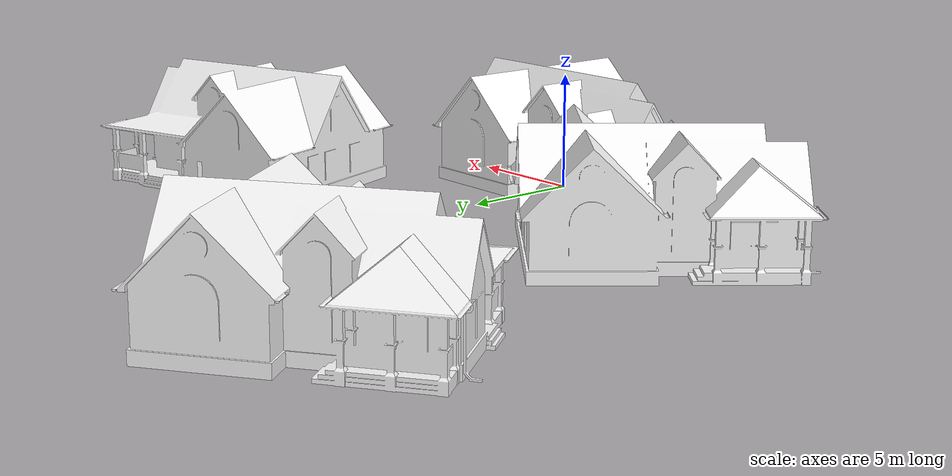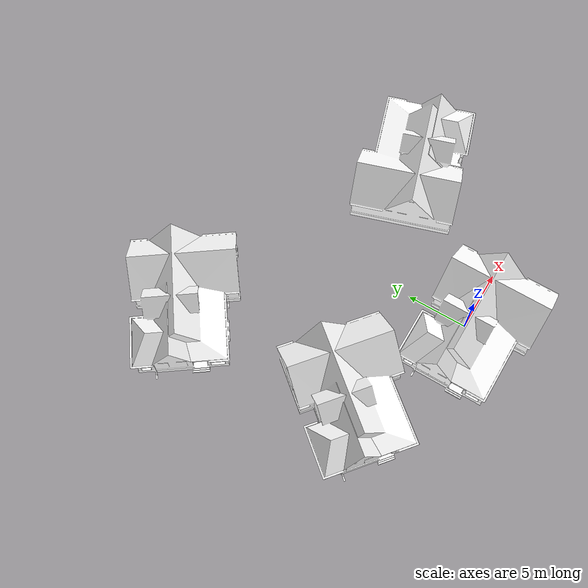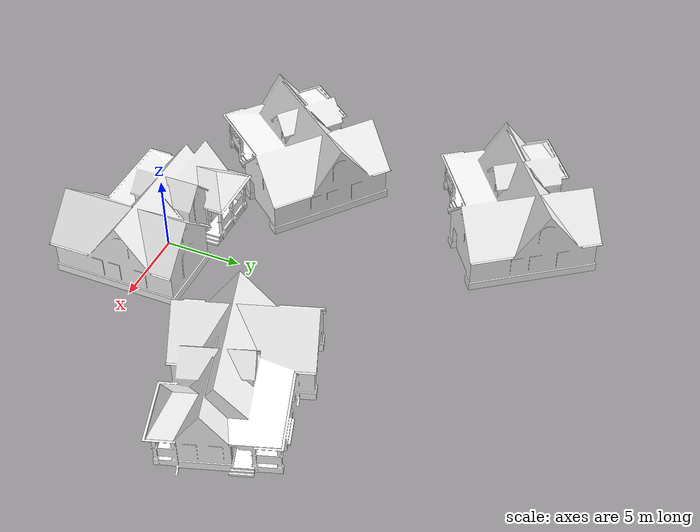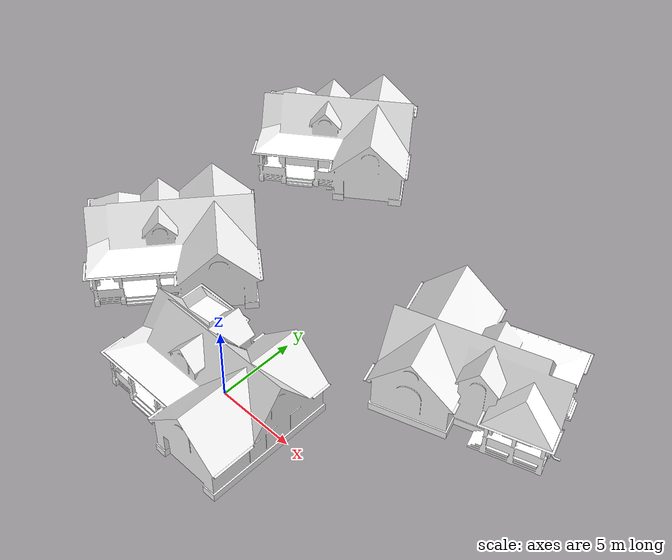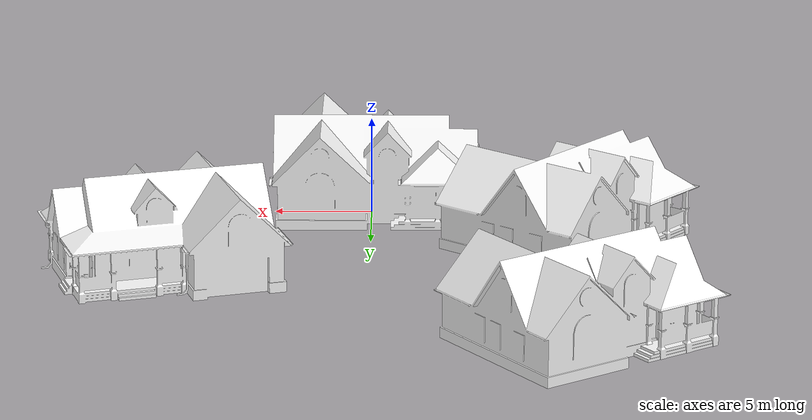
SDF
<sdf version='1.6'>
  <world name='default'>
    <gravity>0 0 0</gravity>
    <scene>
      <ambient>0.2 0.2 0.2 1</ambient>
      <background>1 1 1 1</background>
      <shadows>1</shadows>
      <grid>false</grid>
      <origin_visual>false</origin_visual>
    </scene>

    <include>
      <uri>model://sun</uri>
    </include>

   <model name="camera">
    <pose>0 0 0 0 0 0</pose>
    <link name="link">
      <kinematic>true</kinematic>
      <visual name="visual">
        <geometry>
          <box>
            <size>0.1 0.1 0.1</size>
          </box>
        </geometry>
      </visual>
      <sensor name="camera" type="camera">
        <camera>
          <horizontal_fov>1.047</horizontal_fov>
          <image>
            <width>640</width>
            <height>480</height>
          </image>
          <clip>
            <near>0.1</near>
            <far>100</far>
          </clip>
        </camera>
        <always_on>1</always_on>
        <update_rate>10</update_rate>
        <visualize>true</visualize>
        <plugin name="myCamera" filename="libcamp.so"/>
      </sensor>
      <sensor name='imu_sensor' type='imu'>
          <always_on>1</always_on>
          <update_rate>100</update_rate>
          <plugin name="myIMU" filename="libimup.so"/>
      </sensor>
      <sensor name='gps_sensor' type='gps'>
          <always_on>1</always_on>
          <update_rate>5</update_rate>
          <plugin name="myGPS" filename="libgpsp.so"/>
      </sensor>
    </link>

    <plugin name="model_push" filename="libmodel_push.so"/>
  </model>

     <model name='House 1'>
      <static>1</static>
      <link name='link'>
        <visual name='visual'>
          <geometry>
            <mesh>
              <uri>model://house_1/meshes/house_1.dae</uri>
              <scale>1 1 1</scale>
            </mesh>
          </geometry>
          <material>
            <script>
              <uri>model://house_1/materials/scripts</uri>
              <uri>model://house_1/materials/textures</uri>
              <name>House_1/Diffuse</name>
            </script>
            <shader type='normal_map_object_space'>
              <normal_map>House_1_Normal.png</normal_map>
            </shader>
          </material>
        </visual>
        <self_collide>0</self_collide>
        <kinematic>1</kinematic>
      </link>
      <pose frame=''>-0.020483 -0.694013 0 0 -0 0</pose>
    </model>

    <model name='House 1'>
      <static>1</static>
      <link name='link'>
        <visual name='visual'>
          <geometry>
            <mesh>
              <uri>model://house_1/meshes/house_1.dae</uri>
              <scale>1 1 1</scale>
            </mesh>
          </geometry>
          <material>
            <script>
              <uri>model://house_1/materials/scripts</uri>
              <uri>model://house_1/materials/textures</uri>
              <name>House_1/Diffuse</name>
            </script>
            <shader type='normal_map_object_space'>
              <normal_map>House_1_Normal.png</normal_map>
            </shader>
          </material>
        </visual>
        <self_collide>0</self_collide>
        <kinematic>1</kinematic>
      </link>
      <pose frame=''>-10 20 0 0 -0 120</pose>
    </model>

    <model name='House 1'>
      <static>1</static>
      <link name='link'>
        <visual name='visual'>
          <geometry>
            <mesh>
              <uri>model://house_1/meshes/house_1.dae</uri>
              <scale>1 1 1</scale>
            </mesh>
          </geometry>
          <material>
            <script>
              <uri>model://house_1/materials/scripts</uri>
              <uri>model://house_1/materials/textures</uri>
              <name>House_1/Diffuse</name>
            </script>
            <shader type='normal_map_object_space'>
              <normal_map>House_1_Normal.png</normal_map>
            </shader>
          </material>
        </visual>
        <self_collide>0</self_collide>
        <kinematic>1</kinematic>
      </link>
      <pose frame=''>10 10 0 0 0 60</pose>
    </model>

    <model name='House 1'>
      <static>1</static>
      <link name='link'>
        <visual name='visual'>
          <geometry>
            <mesh>
              <uri>model://house_1/meshes/house_1.dae</uri>
              <scale>1 1 1</scale>
            </mesh>
          </geometry>
          <material>
            <script>
              <uri>model://house_1/materials/scripts</uri>
              <uri>model://house_1/materials/textures</uri>
              <name>House_1/Diffuse</name>
            </script>
            <shader type='normal_map_object_space'>
              <normal_map>House_1_Normal.png</normal_map>
            </shader>
          </material>
        </visual>
        <self_collide>0</self_collide>
        <kinematic>1</kinematic>
      </link>
      <pose frame=''>-10 5 0 0 0 70</pose>
    </model>

  </world>
</sdf>
